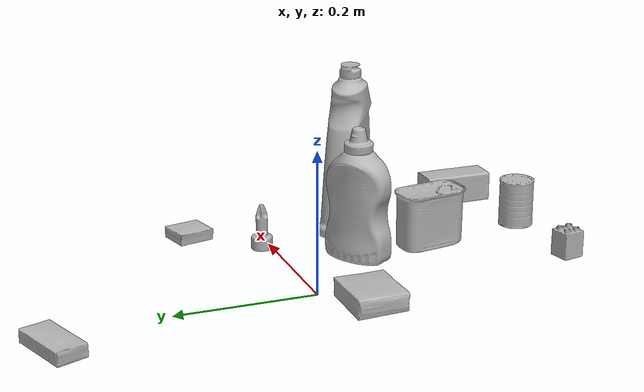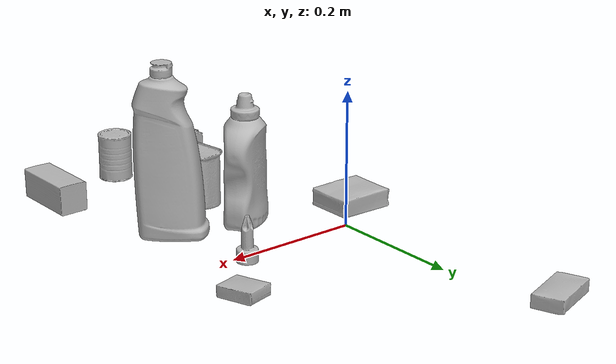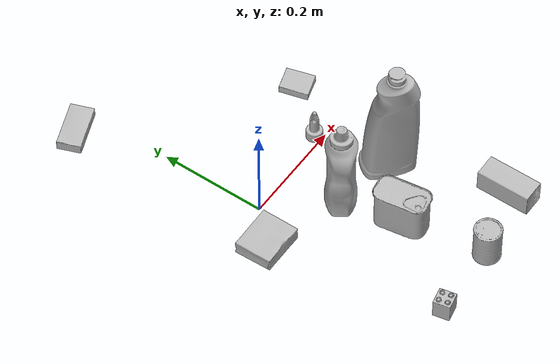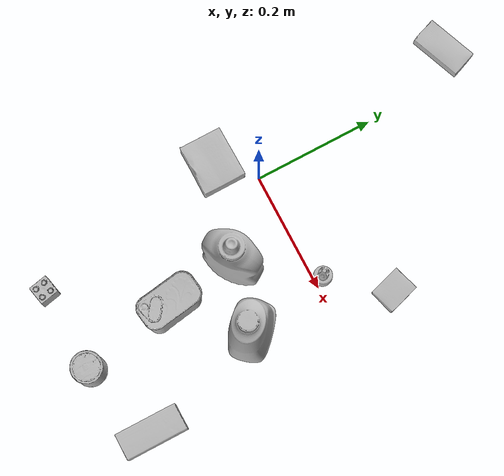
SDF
<sdf version="1.4">
  <world name="default">
    <light name="light1" type="point">
      <pose>0 0 1 0 0 0</pose>
      <diffuse>3 3 3 1</diffuse>
      <specular>3 3 3 1</specular>
    </light>
    <light name="light2" type="point">
      <pose>0 0.5 2 0 0 0</pose>
      <diffuse>1 1 1 1</diffuse>
      <specular>1 1 1 1</specular>
    </light>
    <light name="light3" type="point">
      <pose>0 0.5 2 0 0 0</pose>
      <diffuse>3 3 3 1</diffuse>
      <specular>3 3 3 1</specular>
    </light>
    <scene>
      <ambient>0.7 0.7 0.7</ambient>
    </scene>
    <model name="bottle1">
      <link name="link_bottle1">
        <collision name="default">
          <geometry>
            <mesh>
              <uri>model://bleach_cleanser/collision_meshes/collision.obj</uri>
              <scale>1.0 1.0 1.0</scale>
            </mesh>
          </geometry>
          <surface>
            <friction>
              <ode>
                <mu>0.5</mu>
                <mu2>0.5</mu2>
              </ode>
            </friction>
          <contact>
        <ode>
            <max_vel>0</max_vel>
            <min_depth>0.0001</min_depth>
            <kp>1e8</kp>
        </ode>
    </contact></surface>
        </collision>
        <visual name="default">
          <geometry>
            <mesh>
              <uri>model://bleach_cleanser/visual_meshes/visual.dae</uri>
              <scale>1.0 1.0 1.0</scale>
            </mesh>
          </geometry>
        </visual>
        <inertial>
          <mass>1.578364610671997</mass>
          <pose>0.00012193182919872925 0.003783882362768054 -0.024421613663434982 -0.07381669869228723 0.000420116582496686 -0.006875050642452563</pose>
          <inertia>
            <ixx>0.00768213</ixx>
            <iyy>0.0071586203</iyy>
            <izz>0.0013134446</izz>
            <ixy>0</ixy>
            <ixz>0</ixz>
            <iyz>0</iyz>
          </inertia>
        </inertial>
      </link>
      <pose>0.21167436242103577 -0.1268543004989624 0.12608063220977783 -0.004550794691663695 0.006453532499181783 -2.26151435903562</pose>
    </model>
    <model name="bottle2">
      <link name="link_bottle2">
        <collision name="default">
          <geometry>
            <mesh>
              <uri>model://mustard_bottle/collision_meshes/collision.obj</uri>
              <scale>1.0 1.0 1.0</scale>
            </mesh>
          </geometry>
          <surface>
            <friction>
              <ode>
                <mu>0.5</mu>
                <mu2>0.5</mu2>
              </ode>
            </friction>
          <contact>
        <ode>
            <max_vel>0</max_vel>
            <min_depth>0.0001</min_depth>
            <kp>1e8</kp>
        </ode>
    </contact></surface>
        </collision>
        <visual name="default">
          <geometry>
            <mesh>
              <uri>model://mustard_bottle/visual_meshes/visual.dae</uri>
              <scale>1.0 1.0 1.0</scale>
            </mesh>
          </geometry>
        </visual>
        <inertial>
          <mass>0.5896905064582825</mass>
          <pose>0.000503245391882956 -0.00015647403779439628 -0.0174757931381464 0.00041823284967905286 0.0009465779461724547 0.024853724225743102</pose>
          <inertia>
            <ixx>0.00163749</ixx>
            <iyy>0.0014367587</iyy>
            <izz>0.00043156123</izz>
            <ixy>0</ixy>
            <ixz>0</ixz>
            <iyz>0</iyz>
          </inertia>
        </inertial>
      </link>
      <pose>0.10296764969825745 -0.1004626452922821 0.09615199267864227 1.4824872100335512e-05 1.6602170811754638e-05 2.1425183693764014</pose>
    </model>
    <model name="toy1">
      <link name="link_toy1">
        <collision name="default">
          <geometry>
            <mesh>
              <uri>model://b_lego_duplo/collision_meshes/collision.obj</uri>
              <scale>1.0 1.0 1.0</scale>
            </mesh>
          </geometry>
          <surface>
            <friction>
              <ode>
                <mu>0.5</mu>
                <mu2>0.5</mu2>
              </ode>
            </friction>
          <contact>
        <ode>
            <max_vel>0</max_vel>
            <min_depth>0.0001</min_depth>
            <kp>1e8</kp>
        </ode>
    </contact></surface>
        </collision>
        <visual name="default">
          <geometry>
            <mesh>
              <uri>model://b_lego_duplo/visual_meshes/visual.dae</uri>
              <scale>1.0 1.0 1.0</scale>
            </mesh>
          </geometry>
        </visual>
        <inertial>
          <mass>0.04927889630198479</mass>
          <pose>-0.00011053016351070255 -9.152428901870735e-06 0.0019294293597340584 -0.03749545918935276 -0.026353596882306905 0.4519115393215097</pose>
          <inertia>
            <ixx>1.0085294e-05</ixx>
            <iyy>1.015309e-05</iyy>
            <izz>8.985672e-06</izz>
            <ixy>0</ixy>
            <ixz>0</ixz>
            <iyz>0</iyz>
          </inertia>
        </inertial>
      </link>
      <pose>0.00566184613853693 -0.3806682229042053 0.021814998239278793 7.695802378695504e-07 6.182880160673222e-07 -2.9391053572253094</pose>
    </model>
    <model name="toy2">
      <link name="link_toy2">
        <collision name="default">
          <geometry>
            <mesh>
              <uri>model://d_toy_airplane/collision_meshes/collision.obj</uri>
              <scale>1.0 1.0 1.0</scale>
            </mesh>
          </geometry>
          <surface>
            <friction>
              <ode>
                <mu>0.5</mu>
                <mu2>0.5</mu2>
              </ode>
            </friction>
          <contact>
        <ode>
            <max_vel>0</max_vel>
            <min_depth>0.0001</min_depth>
            <kp>1e8</kp>
        </ode>
    </contact></surface>
        </collision>
        <visual name="default">
          <geometry>
            <mesh>
              <uri>model://d_toy_airplane/visual_meshes/visual.dae</uri>
              <scale>1.0 1.0 1.0</scale>
            </mesh>
          </geometry>
        </visual>
        <inertial>
          <mass>0.023543989285826683</mass>
          <pose>9.41029647947289e-05 -5.8093268307857215e-05 -0.011728093028068542 0.0002670074791080515 0.004678977428991067 0.5194709842729006</pose>
          <inertia>
            <ixx>7.058034e-06</ixx>
            <iyy>7.063356e-06</iyy>
            <izz>2.1308651e-06</izz>
            <ixy>0</ixy>
            <ixz>0</ixz>
            <iyz>0</iyz>
          </inertia>
        </inertial>
      </link>
      <pose>0.1867705136537552 0.01447154302150011 0.03333248198032379 8.788290163761531e-05 -0.0008256667414576665 2.258647699939995</pose>
    </model>
    <model name="can1">
      <link name="link_can1">
        <collision name="default">
          <geometry>
            <mesh>
              <uri>model://master_chef_can/collision_meshes/collision.obj</uri>
              <scale>0.5 0.5 0.5</scale>
            </mesh>
          </geometry>
          <surface>
            <friction>
              <ode>
                <mu>0.5</mu>
                <mu2>0.5</mu2>
              </ode>
            </friction>
          <contact>
        <ode>
            <max_vel>0</max_vel>
            <min_depth>0.0001</min_depth>
            <kp>1e8</kp>
        </ode>
    </contact></surface>
        </collision>
        <visual name="default">
          <geometry>
            <mesh>
              <uri>model://master_chef_can/visual_meshes/visual.dae</uri>
              <scale>0.5 0.5 0.5</scale>
            </mesh>
          </geometry>
        </visual>
        <inertial>
          <mass>0.13489052653312683</mass>
          <pose>-4.6619643399026245e-05 1.392684936263322e-07 -5.080000119050965e-05 -0.0017995055981966167 0.0006479432683086387 -0.6102521024359563</pose>
          <inertia>
            <ixx>7.9171594e-05</ixx>
            <iyy>7.85889e-05</iyy>
            <izz>4.3748354e-05</izz>
            <ixy>0</ixy>
            <ixz>0</ixz>
            <iyz>0</iyz>
          </inertia>
        </inertial>
      </link>
      <pose>0.14766989648342133 -0.3737812936306 0.03530199080705643 -1.2304559105286056e-06 -9.717578775757386e-07 2.213729473431405</pose>
    </model>
    <model name="can2">
      <link name="link_can2">
        <collision name="default">
          <geometry>
            <mesh>
              <uri>model://potted_meat_can/collision_meshes/collision.obj</uri>
              <scale>1.0 1.0 1.0</scale>
            </mesh>
          </geometry>
          <surface>
            <friction>
              <ode>
                <mu>0.5</mu>
                <mu2>0.5</mu2>
              </ode>
            </friction>
          <contact>
        <ode>
            <max_vel>0</max_vel>
            <min_depth>0.0001</min_depth>
            <kp>1e8</kp>
        </ode>
    </contact></surface>
        </collision>
        <visual name="default">
          <geometry>
            <mesh>
              <uri>model://potted_meat_can/visual_meshes/visual.dae</uri>
              <scale>1.0 1.0 1.0</scale>
            </mesh>
          </geometry>
        </visual>
        <inertial>
          <mass>0.4512253701686859</mass>
          <pose>0.00022888150124344975 -5.9891150158364326e-05 -0.0006367433816194534 -0.028093371406289817 -0.007232609295346345 0.015406271951796056</pose>
          <inertia>
            <ixx>0.00058045425</ixx>
            <iyy>0.00035267006</iyy>
            <izz>0.00042216998</izz>
            <ixy>0</ixy>
            <ixz>0</ixz>
            <iyz>0</iyz>
          </inertia>
        </inertial>
      </link>
      <pose>0.11765007674694061 -0.21719355881214142 0.04212801158428192 -7.214322861797306e-08 -4.6127884590061964e-07 0.14002482361158017</pose>
    </model>
    <model name="box1">
      <link name="link_box1">
        <collision name="default">
          <geometry>
            <mesh>
              <uri>model://pudding_box/collision_meshes/collision.obj</uri>
              <scale>0.5 0.5 0.5</scale>
            </mesh>
          </geometry>
          <surface>
            <friction>
              <ode>
                <mu>0.5</mu>
                <mu2>0.5</mu2>
              </ode>
            </friction>
          <contact>
        <ode>
            <max_vel>0</max_vel>
            <min_depth>0.0001</min_depth>
            <kp>1e8</kp>
        </ode>
    </contact></surface>
        </collision>
        <visual name="default">
          <geometry>
            <mesh>
              <uri>model://pudding_box/visual_meshes/visual.dae</uri>
              <scale>0.5 0.5 0.5</scale>
            </mesh>
          </geometry>
        </visual>
        <inertial>
          <mass>0.02510015107691288</mass>
          <pose>0.00024474109522998333 0.0004033942532259971 -0.0002594413817860186 0.005213101332996491 -0.0066037987089797995 0.020079823298230236</pose>
          <inertia>
            <ixx>7.093607e-06</ixx>
            <iyy>4.7726294e-06</iyy>
            <izz>1.04755645e-05</izz>
            <ixy>0</ixy>
            <ixz>0</ixz>
            <iyz>0</iyz>
          </inertia>
        </inertial>
      </link>
      <pose>0.2589670419692993 0.10193106532096863 0.009862901642918587 0.022348493950984507 -0.011391714510079823 0.2907925040627083</pose>
    </model>
    <model name="box2">
      <link name="link_box2">
        <collision name="default">
          <geometry>
            <mesh>
              <uri>model://gelatin_box/collision_meshes/collision.obj</uri>
              <scale>1.0 1.0 1.0</scale>
            </mesh>
          </geometry>
          <surface>
            <friction>
              <ode>
                <mu>0.5</mu>
                <mu2>0.5</mu2>
              </ode>
            </friction>
          <contact>
        <ode>
            <max_vel>0</max_vel>
            <min_depth>0.0001</min_depth>
            <kp>1e8</kp>
        </ode>
    </contact></surface>
        </collision>
        <visual name="default">
          <geometry>
            <mesh>
              <uri>model://gelatin_box/visual_meshes/visual.dae</uri>
              <scale>1.0 1.0 1.0</scale>
            </mesh>
          </geometry>
        </visual>
        <inertial>
          <mass>0.2452477514743805</mass>
          <pose>0.000431961816502735 0.00011156871187267825 -0.0003640321083366871 -0.0010503720803081407 -0.004755818225601415 0.01644055574590794</pose>
          <inertia>
            <ixx>0.0001731249</ixx>
            <iyy>0.0001236622</iyy>
            <izz>0.00026353472</izz>
            <ixy>0</ixy>
            <ixz>0</ixz>
            <iyz>0</iyz>
          </inertia>
        </inertial>
      </link>
      <pose>-0.05530386045575142 -0.0540626160800457 0.015168311074376106 0.005596669580726389 -0.007303665127747652 -1.570750162335604</pose>
    </model>
    <model name="box3">
      <link name="link_box3">
        <collision name="default">
          <geometry>
            <mesh>
              <uri>model://sugar_box/collision_meshes/collision.obj</uri>
              <scale>0.5 0.5 0.5</scale>
            </mesh>
          </geometry>
          <surface>
            <friction>
              <ode>
                <mu>0.5</mu>
                <mu2>0.5</mu2>
              </ode>
            </friction>
          <contact>
        <ode>
            <max_vel>0</max_vel>
            <min_depth>0.0001</min_depth>
            <kp>1e8</kp>
        </ode>
    </contact></surface>
        </collision>
        <visual name="default">
          <geometry>
            <mesh>
              <uri>model://sugar_box/visual_meshes/visual.dae</uri>
              <scale>0.5 0.5 0.5</scale>
            </mesh>
          </geometry>
        </visual>
        <inertial>
          <mass>0.12277840822935104</mass>
          <pose>0.0005171863595023751 1.9245549992774613e-05 -0.00018182402709499002 -0.0004046257474220826 0.0010506635214397083 0.0026153787892127145</pose>
          <inertia>
            <ixx>2.5574656e-05</ixx>
            <iyy>8.2662555e-05</iyy>
            <izz>9.895694e-05</izz>
            <ixy>0</ixy>
            <ixz>0</ixz>
            <iyz>0</iyz>
          </inertia>
        </inertial>
      </link>
      <pose>-0.04828691482543945 0.3626018166542053 0.011399306356906891 0.000775307096555407 -0.023432507117781925 0.35506437689811987</pose>
    </model>
    <model name="box4">
      <link name="link_box4">
        <collision name="default">
          <geometry>
            <mesh>
              <uri>model://wood_block/collision_meshes/collision.obj</uri>
              <scale>0.5 0.5 0.5</scale>
            </mesh>
          </geometry>
          <surface>
            <friction>
              <ode>
                <mu>0.5</mu>
                <mu2>0.5</mu2>
              </ode>
            </friction>
          <contact>
        <ode>
            <max_vel>0</max_vel>
            <min_depth>0.0001</min_depth>
            <kp>1e8</kp>
        </ode>
    </contact></surface>
        </collision>
        <visual name="default">
          <geometry>
            <mesh>
              <uri>model://wood_block/visual_meshes/visual.dae</uri>
              <scale>0.5 0.5 0.5</scale>
            </mesh>
          </geometry>
        </visual>
        <inertial>
          <mass>0.2967980206012726</mass>
          <pose>-2.9066577553749084e-06 -0.00028540470520965755 0.00013204291462898254 -0.05220902064674581 -0.005192696668457315 -0.006861378272965977</pose>
          <inertia>
            <ixx>9.929016e-05</ixx>
            <iyy>0.00031365763</iyy>
            <izz>0.00031248436</izz>
            <ixy>0</ixy>
            <ixz>0</ixz>
            <iyz>0</iyz>
          </inertia>
        </inertial>
      </link>
      <pose>0.2778783142566681 -0.33319342136383057 0.02262926660478115 -0.005208575074911016 0.005718766668661592 -1.5676924887911705</pose>
    </model>
  <physics type="ode">
      <max_contacts>50</max_contacts>
      <ode>
        <solver>
          <type>quick</type>
          <iters>75</iters>
        </solver>
        <constraints>
          <contact_max_correcting_vel>0</contact_max_correcting_vel>
          <contact_surface_layer>0</contact_surface_layer>
        </constraints>
      </ode>
    </physics></world>
</sdf>
